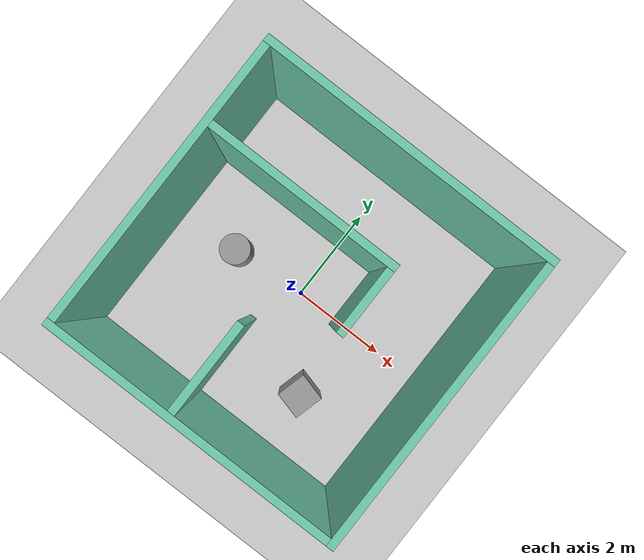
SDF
<sdf version="1.7">
 <world name="default">
  <light name="sun" type="directional">
   <pose>0 0 10 0 -0 0</pose>
   <diffuse>0.8 0.8 0.8 1</diffuse>
   <specular>0.2 0.2 0.2 1</specular>
   <attenuation>
    <range>1000</range>
    <constant>0.9</constant>
    <linear>0.01</linear>
    <quadratic>0.001</quadratic>
   </attenuation>
   <direction>-0.5 0.1 -0.9</direction>
   <spot><inner_angle>0</inner_angle><outer_angle>0</outer_angle><falloff>0</falloff></spot>
  </light>
  <model name="ground_plane">
   <static>1</static>
   <link name="link">
    <collision name="collision">
     <geometry><plane><normal>0 0 1</normal><size>100 100</size></plane></geometry>
     <surface>
      <contact><collide_bitmask>65535</collide_bitmask></contact>
      <friction><ode><mu>100</mu><mu2>50</mu2></ode></friction>
     </surface>
    </collision>
    <visual name="visual">
     <cast_shadows>0</cast_shadows>
     <geometry><plane><normal>0 0 1</normal><size>100 100</size></plane></geometry>
     <material>
      <script><uri>file://media/materials/scripts/gazebo.material</uri><name>Gazebo/Grey</name></script>
     </material>
    </visual>
   </link>
  </model>
  <gravity>0 0 -9.8</gravity>
  <magnetic_field>6e-06 2.3e-05 -4.2e-05</magnetic_field>
  <atmosphere type="adiabatic"/>
  <physics type="ode">
   <max_step_size>0.001</max_step_size>
   <real_time_factor>1</real_time_factor>
   <real_time_update_rate>1000</real_time_update_rate>
  </physics>
  <scene><ambient>0.4 0.4 0.4 1</ambient><background>0.7 0.7 0.7 1</background><shadows>1</shadows></scene>
  <spherical_coordinates>
   <surface_model>EARTH_WGS84</surface_model>
   <latitude_deg>0</latitude_deg>
   <longitude_deg>0</longitude_deg>
   <elevation>0</elevation>
   <heading_deg>0</heading_deg>
  </spherical_coordinates>
  <model name="training_place">
   <pose>-0.008095 0.018007 -0 0 -0 0</pose>
   <link name="Wall_11">
    <collision name="Wall_11_Collision">
     <geometry><box><size>6 0.15 2.5</size></box></geometry>
     <pose>0 0 1.25 0 -0 0</pose>
    </collision>
    <visual name="Wall_11_Visual">
     <pose>0 0 1.25 0 -0 0</pose>
     <geometry><box><size>6 0.15 2.5</size></box></geometry>
     <material>
      <script><uri>file://media/materials/scripts/gazebo.material</uri><name>Gazebo/Grey</name></script>
      <ambient>0.435294 0.796078 0.67451 1</ambient>
     </material>
     <meta><layer>0</layer></meta>
    </visual>
    <pose>0 2.925 0 0 -0 0</pose>
   </link>
   <link name="Wall_13">
    <collision name="Wall_13_Collision">
     <geometry><box><size>6 0.15 2.5</size></box></geometry>
     <pose>0 0 1.25 0 -0 0</pose>
    </collision>
    <visual name="Wall_13_Visual">
     <pose>0 0 1.25 0 -0 0</pose>
     <geometry><box><size>6 0.15 2.5</size></box></geometry>
     <material>
      <script><uri>file://media/materials/scripts/gazebo.material</uri><name>Gazebo/Grey</name></script>
      <ambient>0.435294 0.796078 0.67451 1</ambient>
     </material>
     <meta><layer>0</layer></meta>
    </visual>
    <pose>2.925 -0 0 0 -0 -1.5708</pose>
   </link>
   <link name="Wall_14">
    <collision name="Wall_14_Collision">
     <geometry><box><size>6 0.15 2.5</size></box></geometry>
     <pose>0 0 1.25 0 -0 0</pose>
    </collision>
    <visual name="Wall_14_Visual">
     <pose>0 0 1.25 0 -0 0</pose>
     <geometry><box><size>6 0.15 2.5</size></box></geometry>
     <material>
      <script><uri>file://media/materials/scripts/gazebo.material</uri><name>Gazebo/Grey</name></script>
      <ambient>0.435294 0.796078 0.67451 1</ambient>
     </material>
     <meta><layer>0</layer></meta>
    </visual>
    <pose>0 -2.925 0 0 -0 3.14159</pose>
   </link>
   <link name="Wall_15">
    <collision name="Wall_15_Collision">
     <geometry><box><size>6 0.15 2.5</size></box></geometry>
     <pose>0 0 1.25 0 -0 0</pose>
    </collision>
    <visual name="Wall_15_Visual">
     <pose>0 0 1.25 0 -0 0</pose>
     <geometry><box><size>6 0.15 2.5</size></box></geometry>
     <material>
      <script><uri>file://media/materials/scripts/gazebo.material</uri><name>Gazebo/Grey</name></script>
      <ambient>0.435294 0.796078 0.67451 1</ambient>
     </material>
     <meta><layer>0</layer></meta>
    </visual>
    <pose>-2.925 -0 0 0 -0 1.5708</pose>
   </link>
   <link name="Wall_20">
    <collision name="Wall_20_Collision">
     <geometry><box><size>2 0.15 2.5</size></box></geometry>
     <pose>0 0 1.25 0 -0 0</pose>
    </collision>
    <visual name="Wall_20_Visual">
     <pose>0 0 1.25 0 -0 0</pose>
     <geometry><box><size>2 0.15 2.5</size></box></geometry>
     <material>
      <script><uri>file://media/materials/scripts/gazebo.material</uri><name>Gazebo/Grey</name></script>
      <ambient>0.435294 0.796078 0.67451 1</ambient>
     </material>
     <meta><layer>0</layer></meta>
    </visual>
    <pose>-0.458901 -1.99168 0 0 -0 1.5708</pose>
   </link>
   <link name="Wall_22">
    <collision name="Wall_22_Collision">
     <geometry><box><size>4 0.15 2.5</size></box></geometry>
     <pose>0 0 1.25 0 -0 0</pose>
    </collision>
    <visual name="Wall_22_Visual">
     <pose>0 0 1.25 0 -0 0</pose>
     <geometry><box><size>4 0.15 2.5</size></box></geometry>
     <material>
      <script><uri>file://media/materials/scripts/gazebo.material</uri><name>Gazebo/Grey</name></script>
      <ambient>0.435294 0.796078 0.67451 1</ambient>
     </material>
     <meta><layer>0</layer></meta>
    </visual>
    <pose>-1 1.26344 0 0 -0 0</pose>
   </link>
   <link name="Wall_24">
    <collision name="Wall_24_Collision">
     <geometry><box><size>1.5 0.15 2.5</size></box></geometry>
     <pose>0 0 1.25 0 -0 0</pose>
    </collision>
    <visual name="Wall_24_Visual">
     <pose>0 0 1.25 0 -0 0</pose>
     <geometry><box><size>1.5 0.15 2.5</size></box></geometry>
     <material>
      <script><uri>file://media/materials/scripts/gazebo.material</uri><name>Gazebo/Grey</name></script>
      <ambient>0.435294 0.796078 0.67451 1</ambient>
     </material>
     <meta><layer>0</layer></meta>
    </visual>
    <pose>0.925 0.588444 0 0 -0 -1.5708</pose>
   </link>
   <static>1</static>
  </model>
  <model name="unit_cylinder">
   <pose>-1.51835 -0.102963 0.412064 0 -0 0</pose>
   <link name="link">
    <inertial>
     <mass>1</mass>
     <inertia><ixx>0.145833</ixx><ixy>0</ixy><ixz>0</ixz><iyy>0.145833</iyy><iyz>0</iyz><izz>0.125</izz></inertia>
    </inertial>
    <collision name="collision">
     <geometry><cylinder><radius>0.306039</radius><length>0.824142</length></cylinder></geometry>
    </collision>
    <visual name="visual">
     <geometry><cylinder><radius>0.306039</radius><length>0.824142</length></cylinder></geometry>
     <material>
      <script><name>Gazebo/Grey</name><uri>file://media/materials/scripts/gazebo.material</uri></script>
     </material>
    </visual>
   </link>
  </model>
  <model name="unit_box">
   <pose>1.2007 -1.56744 0.417401 0 -0 -0.257729</pose>
   <link name="link">
    <inertial>
     <mass>1</mass>
     <inertia>
      <ixx>0.166667</ixx>
      <ixy>0</ixy>
      <ixz>0</ixz>
      <iyy>0.166667</iyy>
      <iyz>0</iyz>
      <izz>0.166667</izz>
     </inertia>
    </inertial>
    <collision name="collision">
     <geometry><box><size>0.572022 0.608876 0.834803</size></box></geometry>
    </collision>
    <visual name="visual">
     <geometry><box><size>0.572022 0.608876 0.834803</size></box></geometry>
     <material>
      <script><name>Gazebo/Grey</name><uri>file://media/materials/scripts/gazebo.material</uri></script>
     </material>
    </visual>
   </link>
  </model>
  <light name="user_point_light_0" type="point">
   <pose>2.18446 -0.506556 1 0 -0 0</pose>
   <diffuse>0.5 0.5 0.5 1</diffuse>
   <specular>0.1 0.1 0.1 1</specular>
   <attenuation>
    <range>20</range>
    <constant>0.5</constant>
    <linear>0.01</linear>
    <quadratic>0.001</quadratic>
   </attenuation>
   <cast_shadows>0</cast_shadows>
   <direction>0 0 -1</direction>
  </light>
  <light name="user_point_light_1" type="point">
   <pose>-2.31708 -1.9323 1 0 -0 0</pose>
   <diffuse>0.5 0.5 0.5 1</diffuse>
   <specular>0.1 0.1 0.1 1</specular>
   <attenuation>
    <range>20</range>
    <constant>0.5</constant>
    <linear>0.01</linear>
    <quadratic>0.001</quadratic>
   </attenuation>
   <cast_shadows>0</cast_shadows>
   <direction>0 0 -1</direction>
  </light>
 </world>
</sdf>
